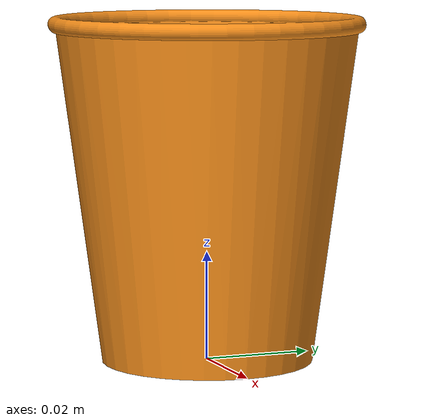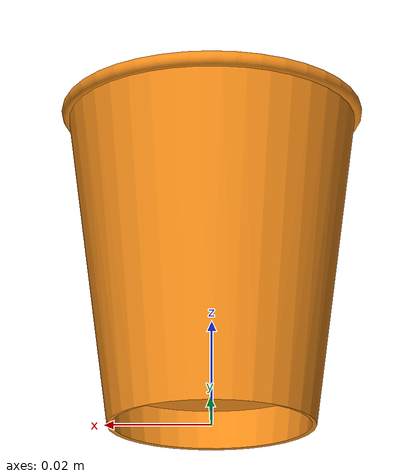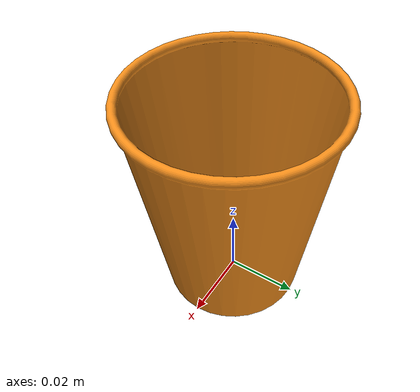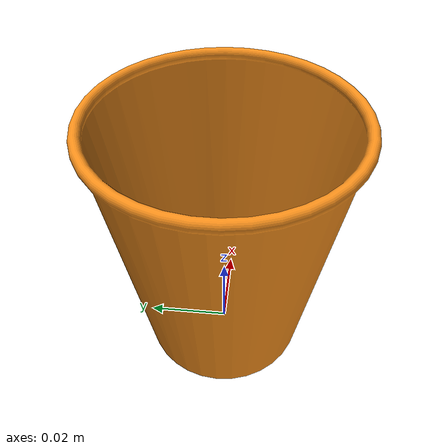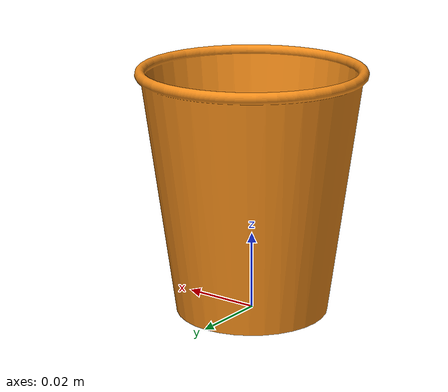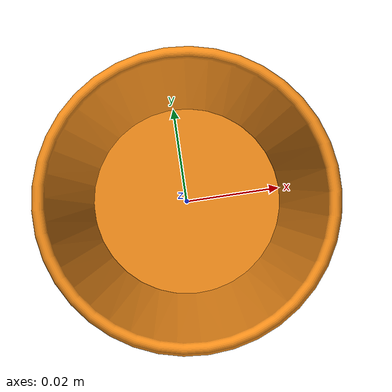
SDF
<?xml version='1.0'?>
<sdf version='1.7'>
  <model name='Paper_Cup_Orange'>
    <static>false</static>
    <pose>0 0 0 0 0 0</pose>

    <link name="paper_cup_orange">
        <collision name="paper_cup_orange_collision">
            <geometry>
            <mesh>
                <uri>$(find artpark_gazebo)/models/papercup.dae</uri>
            </mesh>
            </geometry>
        </collision>
        <visual name="paper_cup_orange_visual">
            <geometry>
            <mesh>
                <uri>$(find artpark_gazebo)/models/papercup.dae</uri>
            </mesh>
            </geometry>
            <material>
                <script>
                    <name>Gazebo/Orange</name>
                </script>
            </material>
        </visual>
    </link>

  </model>
</sdf>
